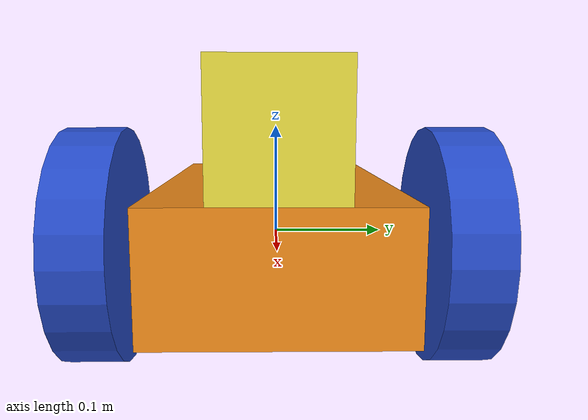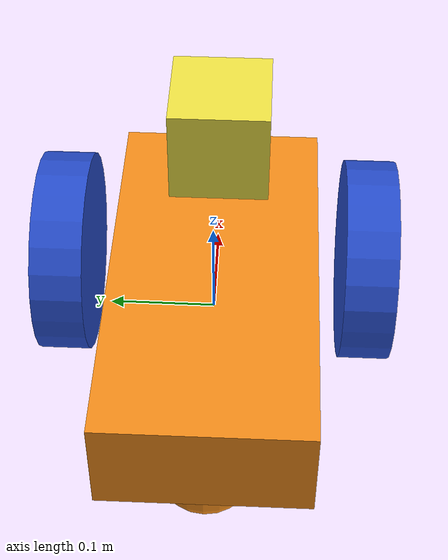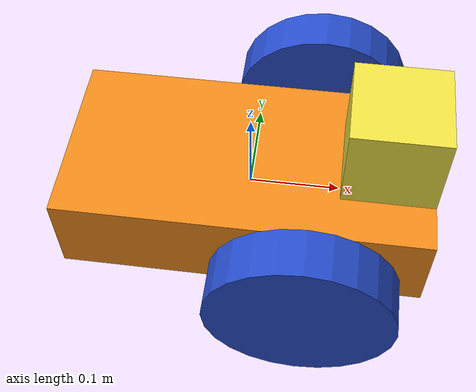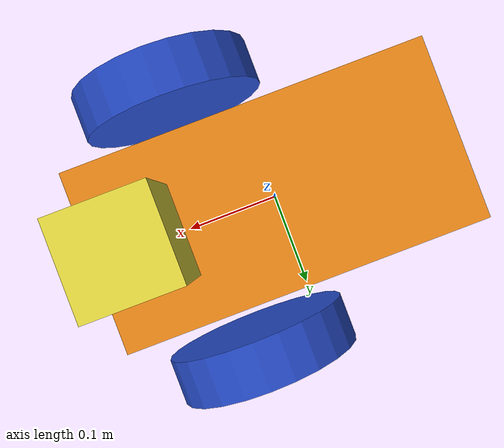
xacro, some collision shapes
<?xml version='1.0'?>

<robot name="differential_drive_bot" xmlns:xacro="http://www.ros.org/wiki/xacro">

  <xacro:property name="cameraSize" value="0.05"/>
  <xacro:property name="cameraMass" value="0.1"/>

  <xacro:include filename="$(find gazebo)/urdf/diff_bot.gazebo" />
  <xacro:include filename="$(find gazebo)/urdf/materials.xacro" />
  <xacro:include filename="$(find gazebo)/urdf/macros.xacro" />

  <link name='chassis'>
    <pose>0 0 0.1 0 0 0</pose>

    <inertial>
      <mass value="15.0"/>
      <origin xyz="0.0 0 0.1" rpy=" 0 0 0"/>
      <inertia
          ixx="0.1" ixy="0" ixz="0"
          iyy="0.1" iyz="0"
          izz="0.1"
      />
    </inertial>

    <collision name='collision'>
      <geometry>
        <box size=".4 .2 .1"/>
      </geometry>
    </collision>

    <visual name='chassis_visual'>
      <origin xyz="0 0 0" rpy=" 0 0 0"/>
      <geometry>
        <box size=".4 .2 .1"/>
      </geometry>
    </visual>

    <collision name='caster_collision'>
      <origin xyz="-0.15 0 -0.05" rpy=" 0 0 0"/>
      <geometry>
        <sphere radius="0.05"/>
      </geometry>
      <surface>
        <friction>
          <ode>
            <mu>0.0</mu>
            <mu2>0.0</mu2>
            <slip1>1.0</slip1>
            <slip2>1.0</slip2>
          </ode>
        </friction>
      </surface>
    </collision>

    <visual name='caster_visual'>
      <origin xyz="-0.15 0 -0.05" rpy=" 0 0 0"/>
      <geometry>
        <sphere radius="0.05"/>
      </geometry>
    </visual>

  </link>

  <link name="left_wheel">
    <!--origin xyz="0.1 0.13 0.1" rpy="0 1.5707 1.5707"/-->
    <collision name="collision">
      <origin xyz="0 0 0" rpy="0 1.5707 1.5707"/>
      <geometry>
        <cylinder radius="0.1" length="0.05"/>
      </geometry>
    </collision>
    <visual name="left_wheel_visual">
      <origin xyz="0 0 0" rpy="0 1.5707 1.5707"/>
      <geometry>
        <cylinder radius="0.1" length="0.05"/>
      </geometry>
    </visual>
    <inertial>
      <origin xyz="0 0 0" rpy="0 1.5707 1.5707"/>
      <mass value="25"/>
      <inertia
        ixx=".1" ixy="0.0" ixz="0.0"
        iyy=".1" iyz="0.0"
        izz=".1"/>
    </inertial>
  </link>

  <link name="right_wheel">
    <!--origin xyz="0.1 -0.13 0.1" rpy="0 1.5707 1.5707"/-->
    <collision name="collision">
      <origin xyz="0 0 0" rpy="0 1.5707 1.5707"/>
      <geometry>
        <cylinder radius="0.1" length="0.05"/>
      </geometry>
    </collision>
    <visual name="right_wheel_visual">
      <origin xyz="0 0 0" rpy="0 1.5707 1.5707"/>
      <geometry>
        <cylinder radius="0.1" length="0.05"/>
      </geometry>
    </visual>
    <inertial>
      <origin xyz="0 0 0" rpy="0 1.5707 1.5707"/>
      <mass value="25"/>
      <inertia
        ixx=".1" ixy="0.0" ixz="0.0"
        iyy=".1" iyz="0.0"
        izz=".1"/>
    </inertial>
  </link>

  <joint type="continuous" name="left_wheel_hinge">
    <origin xyz=".07 0.15 0" rpy="0 0 0"/>
    <child link="left_wheel"/>
    <parent link="chassis"/>
    <axis xyz="0 1 0" rpy="0 0 0"/>
    <limit effort="10000" velocity="1000"/>
    <joint_properties damping="1.0" friction="1.0"/>
    <implicitSpringDamper>1</implicitSpringDamper>
  </joint>

  <joint type="continuous" name="right_wheel_hinge">
    <origin xyz=".07 -0.15 0" rpy="0 0 0"/>
    <child link="right_wheel"/>
    <parent link="chassis"/>
    <axis xyz="0 1 0" rpy="0 0 0"/>
    <limit effort="10000" velocity="1000"/>
    <joint_properties damping="1.0" friction="1.0"/>
    <implicitSpringDamper>1</implicitSpringDamper>
  </joint>

  <transmission name="left_wheel_trans">
    <type>transmission_interface/SimpleTransmission</type>
    <joint name="left_wheel_hinge">
      <hardwareInterface>hardware_interface/VelocityJointInterface</hardwareInterface>
      <mechanicalReduction>1</mechanicalReduction>
    </joint>
    <actuator name="left_wheel_motor">
      <mechanicalReduction>1</mechanicalReduction>
      <hardwareInterface>VelocityJointInterface</hardwareInterface>
    </actuator>
  </transmission>

  <transmission name="right_wheel_trans">
    <type>transmission_interface/SimpleTransmission</type>
    <joint name="right_wheel_hinge">
      <hardwareInterface>hardware_interface/VelocityJointInterface</hardwareInterface>
      <mechanicalReduction>1</mechanicalReduction>
    </joint>
    <actuator name="right_wheel_motor">
      <mechanicalReduction>1</mechanicalReduction>
      <hardwareInterface>VelocityJointInterface</hardwareInterface>
    </actuator>
  </transmission>

  <joint name="hokuyo_joint" type="fixed">
    <axis xyz="0 1 0" />
    <origin xyz=".15 0 .1" rpy="0 0 0"/>
    <parent link="chassis"/>
    <child link="hokuyo"/>
  </joint>

  <!-- Hokuyo Laser -->
  <link name="hokuyo">
    <collision>
      <origin xyz="0 0 0" rpy="0 0 0"/>
      <geometry>
    <box size="0.1 0.1 0.1"/>
      </geometry>
    </collision>

    <visual>
      <origin xyz="0 0 0" rpy="0 0 0"/>
      <geometry>
        <mesh filename="package://mybot_description/meshes/hokuyo.dae"/>
      </geometry>
    </visual>

    <inertial>
      <mass value="1e-5" />
      <origin xyz="0 0 0" rpy="0 0 0"/>
      <inertia ixx="1e-6" ixy="0" ixz="0" iyy="1e-6" iyz="0" izz="1e-6" />
    </inertial>
  </link>

  <gazebo>
    <plugin name="gazebo_ros_control" filename="libgazebo_ros_control.so">
      <robotSimType>gazebo_ros_control/DefaultRobotHWSim</robotSimType>
      <legacyModeNS>true</legacyModeNS>
    </plugin>
  </gazebo>

</robot>
